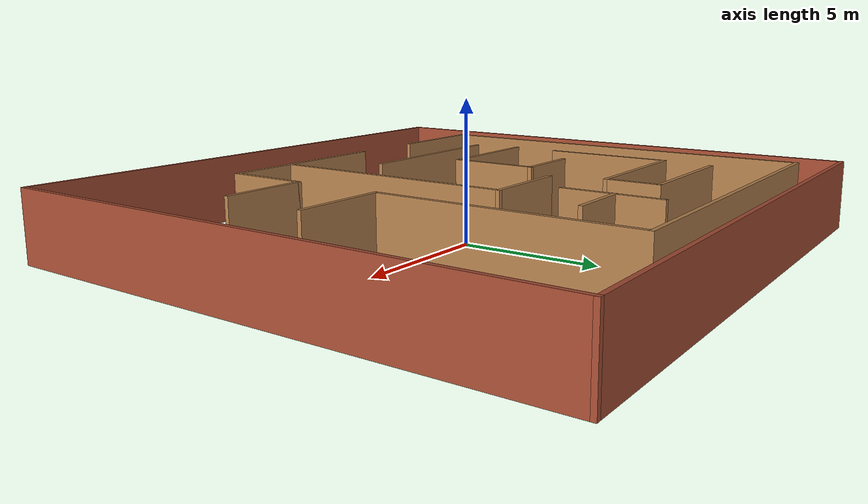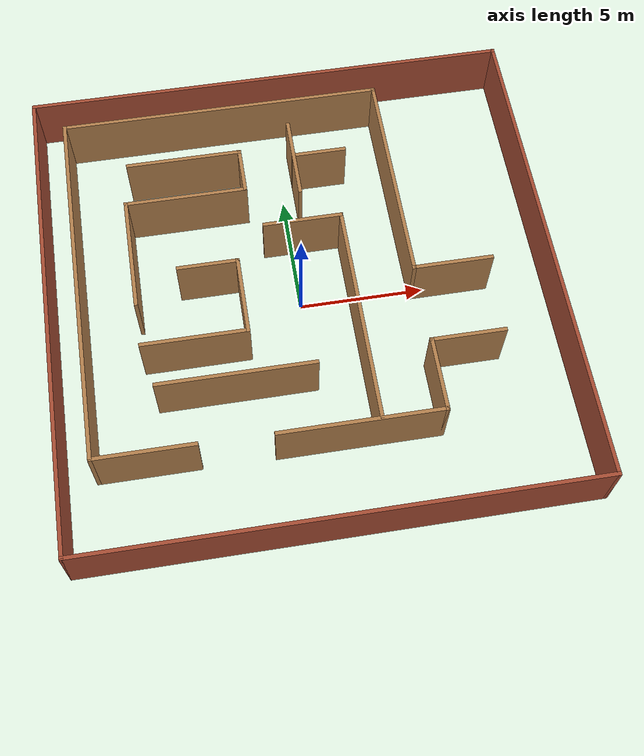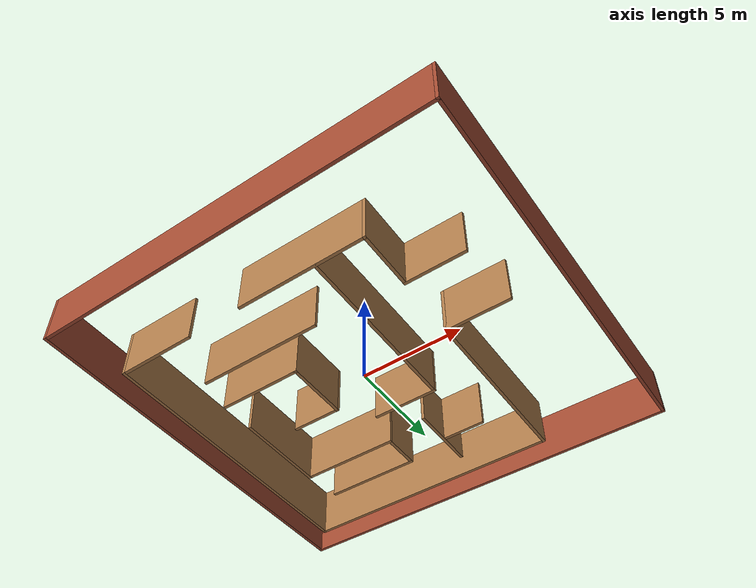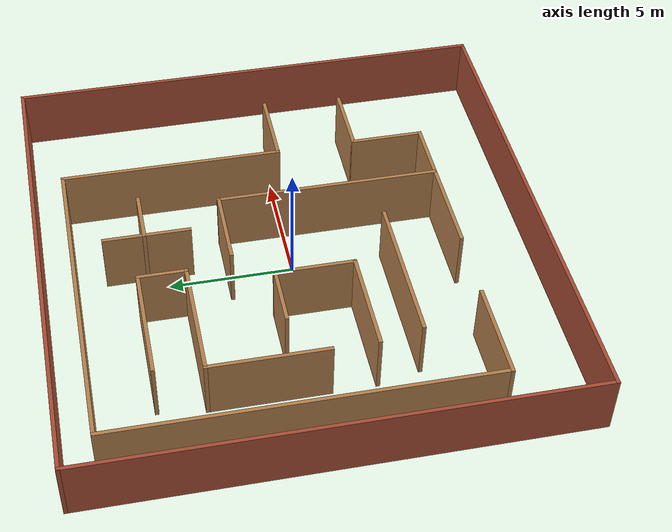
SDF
<?xml version='1.0'?>
<sdf version='1.7'>
  <model name='maze'>
    <pose>0.0401 0.089548 0 0 -0 0</pose>
    <link name='Wall_23'>
      <collision name='Wall_23_Collision'>
        <geometry>
          <box>
            <size>20 0.15 2.5</size>
          </box>
        </geometry>
        <pose>0 0 1.25 0 -0 0</pose>
      </collision>
      <visual name='Wall_23_Visual'>
        <pose>0 0 1.25 0 -0 0</pose>
        <geometry>
          <box>
            <size>20 0.15 2.5</size>
          </box>
        </geometry>
        <material>
          <script>
            <uri>file://media/materials/scripts/gazebo.material</uri>
            <name>Gazebo/Bricks</name>
          </script>
          <ambient>1 1 1 1</ambient>
        </material>
        <meta>
          <layer>0</layer>
        </meta>
      </visual>
      <pose>0 -9.8 0 0 -0 0</pose>
    </link>
    <link name='Wall_24'>
      <collision name='Wall_24_Collision'>
        <geometry>
          <box>
            <size>19.75 0.15 2.5</size>
          </box>
        </geometry>
        <pose>0 0 1.25 0 -0 0</pose>
      </collision>
      <visual name='Wall_24_Visual'>
        <pose>0 0 1.25 0 -0 0</pose>
        <geometry>
          <box>
            <size>19.75 0.15 2.5</size>
          </box>
        </geometry>
        <material>
          <script>
            <uri>file://media/materials/scripts/gazebo.material</uri>
            <name>Gazebo/Bricks</name>
          </script>
          <ambient>1 1 1 1</ambient>
        </material>
        <meta>
          <layer>0</layer>
        </meta>
      </visual>
      <pose>9.925 0 0 0 -0 1.5708</pose>
    </link>
    <link name='Wall_25'>
      <collision name='Wall_25_Collision'>
        <geometry>
          <box>
            <size>20 0.15 2.5</size>
          </box>
        </geometry>
        <pose>0 0 1.25 0 -0 0</pose>
      </collision>
      <visual name='Wall_25_Visual'>
        <pose>0 0 1.25 0 -0 0</pose>
        <geometry>
          <box>
            <size>20 0.15 2.5</size>
          </box>
        </geometry>
        <material>
          <script>
            <uri>file://media/materials/scripts/gazebo.material</uri>
            <name>Gazebo/Bricks</name>
          </script>
          <ambient>1 1 1 1</ambient>
        </material>
        <meta>
          <layer>0</layer>
        </meta>
      </visual>
      <pose>0 9.8 0 0 -0 3.14159</pose>
    </link>
    <link name='Wall_26'>
      <collision name='Wall_26_Collision'>
        <geometry>
          <box>
            <size>19.75 0.15 2.5</size>
          </box>
        </geometry>
        <pose>0 0 1.25 0 -0 0</pose>
      </collision>
      <visual name='Wall_26_Visual'>
        <pose>0 0 1.25 0 -0 0</pose>
        <geometry>
          <box>
            <size>19.75 0.15 2.5</size>
          </box>
        </geometry>
        <material>
          <script>
            <uri>file://media/materials/scripts/gazebo.material</uri>
            <name>Gazebo/Bricks</name>
          </script>
          <ambient>1 1 1 1</ambient>
        </material>
        <meta>
          <layer>0</layer>
        </meta>
      </visual>
      <pose>-9.925 0 0 0 -0 -1.5708</pose>
    </link>
    <link name='Wall_28'>
      <collision name='Wall_28_Collision'>
        <geometry>
          <box>
            <size>4 0.15 2.5</size>
          </box>
        </geometry>
        <pose>0 0 1.25 0 -0 0</pose>
      </collision>
      <visual name='Wall_28_Visual'>
        <pose>0 0 1.25 0 -0 0</pose>
        <geometry>
          <box>
            <size>4 0.15 2.5</size>
          </box>
        </geometry>
        <material>
          <script>
            <uri>file://media/materials/scripts/gazebo.material</uri>
            <name>Gazebo/Wood</name>
          </script>
          <ambient>1 1 1 1</ambient>
        </material>
        <meta>
          <layer>0</layer>
        </meta>
      </visual>
      <pose>-6.78262 -6.33881 0 0 -0 3.14159</pose>
    </link>
    <link name='Wall_29'>
      <collision name='Wall_29_Collision'>
        <geometry>
          <box>
            <size>15 0.15 2.5</size>
          </box>
        </geometry>
        <pose>0 0 1.25 0 -0 0</pose>
      </collision>
      <visual name='Wall_29_Visual'>
        <pose>0 0 1.25 0 -0 0</pose>
        <geometry>
          <box>
            <size>15 0.15 2.5</size>
          </box>
        </geometry>
        <material>
          <script>
            <uri>file://media/materials/scripts/gazebo.material</uri>
            <name>Gazebo/Wood</name>
          </script>
          <ambient>1 1 1 1</ambient>
        </material>
        <meta>
          <layer>0</layer>
        </meta>
      </visual>
      <pose>-8.70762 1.08619 0 0 -0 1.5708</pose>
    </link>
    <link name='Wall_30'>
      <collision name='Wall_30_Collision'>
        <geometry>
          <box>
            <size>13.25 0.15 2.5</size>
          </box>
        </geometry>
        <pose>0 0 1.25 0 -0 0</pose>
      </collision>
      <visual name='Wall_30_Visual'>
        <pose>0 0 1.25 0 -0 0</pose>
        <geometry>
          <box>
            <size>13.25 0.15 2.5</size>
          </box>
        </geometry>
        <material>
          <script>
            <uri>file://media/materials/scripts/gazebo.material</uri>
            <name>Gazebo/Wood</name>
          </script>
          <ambient>1 1 1 1</ambient>
        </material>
        <meta>
          <layer>0</layer>
        </meta>
      </visual>
      <pose>-2.15762 8.51119 0 0 -0 0</pose>
    </link>
    <link name='Wall_31'>
      <collision name='Wall_31_Collision'>
        <geometry>
          <box>
            <size>9 0.15 2.5</size>
          </box>
        </geometry>
        <pose>0 0 1.25 0 -0 0</pose>
      </collision>
      <visual name='Wall_31_Visual'>
        <pose>0 0 1.25 0 -0 0</pose>
        <geometry>
          <box>
            <size>9 0.15 2.5</size>
          </box>
        </geometry>
        <material>
          <script>
            <uri>file://media/materials/scripts/gazebo.material</uri>
            <name>Gazebo/Wood</name>
          </script>
          <ambient>1 1 1 1</ambient>
        </material>
        <meta>
          <layer>0</layer>
        </meta>
      </visual>
      <pose>4.39238 4.08619 0 0 -0 -1.5708</pose>
    </link>
    <link name='Wall_32'>
      <collision name='Wall_32_Collision'>
        <geometry>
          <box>
            <size>3.25 0.15 2.5</size>
          </box>
        </geometry>
        <pose>0 0 1.25 0 -0 0</pose>
      </collision>
      <visual name='Wall_32_Visual'>
        <pose>0 0 1.25 0 -0 0</pose>
        <geometry>
          <box>
            <size>3.25 0.15 2.5</size>
          </box>
        </geometry>
        <material>
          <script>
            <uri>file://media/materials/scripts/gazebo.material</uri>
            <name>Gazebo/Wood</name>
          </script>
          <ambient>1 1 1 1</ambient>
        </material>
        <meta>
          <layer>0</layer>
        </meta>
      </visual>
      <pose>5.94238 -0.338807 0 0 -0 0</pose>
    </link>
    <link name='Wall_34'>
      <collision name='Wall_34_Collision'>
        <geometry>
          <box>
            <size>6.5 0.15 2.5</size>
          </box>
        </geometry>
        <pose>0 0 1.25 0 -0 0</pose>
      </collision>
      <visual name='Wall_34_Visual'>
        <pose>0 0 1.25 0 -0 0</pose>
        <geometry>
          <box>
            <size>6.5 0.15 2.5</size>
          </box>
        </geometry>
        <material>
          <script>
            <uri>file://media/materials/scripts/gazebo.material</uri>
            <name>Gazebo/Wood</name>
          </script>
          <ambient>1 1 1 1</ambient>
        </material>
        <meta>
          <layer>0</layer>
        </meta>
      </visual>
      <pose>1.24839 -6.38533 0 0 -0 0</pose>
    </link>
    <link name='Wall_35'>
      <collision name='Wall_35_Collision'>
        <geometry>
          <box>
            <size>3 0.15 2.5</size>
          </box>
        </geometry>
        <pose>0 0 1.25 0 -0 0</pose>
      </collision>
      <visual name='Wall_35_Visual'>
        <pose>0 0 1.25 0 -0 0</pose>
        <geometry>
          <box>
            <size>3 0.15 2.5</size>
          </box>
        </geometry>
        <material>
          <script>
            <uri>file://media/materials/scripts/gazebo.material</uri>
            <name>Gazebo/Wood</name>
          </script>
          <ambient>1 1 1 1</ambient>
        </material>
        <meta>
          <layer>0</layer>
        </meta>
      </visual>
      <pose>4.42339 -4.96033 0 0 -0 1.5708</pose>
    </link>
    <link name='Wall_36'>
      <collision name='Wall_36_Collision'>
        <geometry>
          <box>
            <size>3 0.15 2.5</size>
          </box>
        </geometry>
        <pose>0 0 1.25 0 -0 0</pose>
      </collision>
      <visual name='Wall_36_Visual'>
        <pose>0 0 1.25 0 -0 0</pose>
        <geometry>
          <box>
            <size>3 0.15 2.5</size>
          </box>
        </geometry>
        <material>
          <script>
            <uri>file://media/materials/scripts/gazebo.material</uri>
            <name>Gazebo/Wood</name>
          </script>
          <ambient>1 1 1 1</ambient>
        </material>
        <meta>
          <layer>0</layer>
        </meta>
      </visual>
      <pose>5.84839 -3.53533 0 0 -0 0</pose>
    </link>
    <link name='Wall_38'>
      <collision name='Wall_38_Collision'>
        <geometry>
          <box>
            <size>6.25 0.15 2.5</size>
          </box>
        </geometry>
        <pose>0 0 1.25 0 -0 0</pose>
      </collision>
      <visual name='Wall_38_Visual'>
        <pose>0 0 1.25 0 -0 0</pose>
        <geometry>
          <box>
            <size>6.25 0.15 2.5</size>
          </box>
        </geometry>
        <material>
          <script>
            <uri>file://media/materials/scripts/gazebo.material</uri>
            <name>Gazebo/Wood</name>
          </script>
          <ambient>1 1 1 1</ambient>
        </material>
        <meta>
          <layer>0</layer>
        </meta>
      </visual>
      <pose>-3.06377 -3.77999 0 0 -0 0</pose>
    </link>
    <link name='Wall_40'>
      <collision name='Wall_40_Collision'>
        <geometry>
          <box>
            <size>9 0.15 2.5</size>
          </box>
        </geometry>
        <pose>0 0 1.25 0 -0 0</pose>
      </collision>
      <visual name='Wall_40_Visual'>
        <pose>0 0 1.25 0 -0 0</pose>
        <geometry>
          <box>
            <size>9 0.15 2.5</size>
          </box>
        </geometry>
        <material>
          <script>
            <uri>file://media/materials/scripts/gazebo.material</uri>
            <name>Gazebo/Wood</name>
          </script>
          <ambient>1 1 1 1</ambient>
        </material>
        <meta>
          <layer>0</layer>
        </meta>
      </visual>
      <pose>1.9814 -1.91381 0 0 -0 1.5708</pose>
    </link>
    <link name='Wall_41'>
      <collision name='Wall_41_Collision'>
        <geometry>
          <box>
            <size>3.25 0.15 2.5</size>
          </box>
        </geometry>
        <pose>0 0 1.25 0 -0 0</pose>
      </collision>
      <visual name='Wall_41_Visual'>
        <pose>0 0 1.25 0 -0 0</pose>
        <geometry>
          <box>
            <size>3.25 0.15 2.5</size>
          </box>
        </geometry>
        <material>
          <script>
            <uri>file://media/materials/scripts/gazebo.material</uri>
            <name>Gazebo/Wood</name>
          </script>
          <ambient>1 1 1 1</ambient>
        </material>
        <meta>
          <layer>0</layer>
        </meta>
      </visual>
      <pose>0.431394 2.51119 0 0 -0 3.14159</pose>
    </link>
    <link name='Wall_44'>
      <collision name='Wall_44_Collision'>
        <geometry>
          <box>
            <size>4.75 0.15 2.5</size>
          </box>
        </geometry>
        <pose>0 0 1.25 0 -0 0</pose>
      </collision>
      <visual name='Wall_44_Visual'>
        <pose>0 0 1.25 0 -0 0</pose>
        <geometry>
          <box>
            <size>4.75 0.15 2.5</size>
          </box>
        </geometry>
        <material>
          <script>
            <uri>file://media/materials/scripts/gazebo.material</uri>
            <name>Gazebo/Wood</name>
          </script>
          <ambient>1 1 1 1</ambient>
        </material>
        <meta>
          <layer>0</layer>
        </meta>
      </visual>
      <pose>-3.95334 6.17613 0 0 -0 0</pose>
    </link>
    <link name='Wall_45'>
      <collision name='Wall_45_Collision'>
        <geometry>
          <box>
            <size>2 0.15 2.5</size>
          </box>
        </geometry>
        <pose>0 0 1.25 0 -0 0</pose>
      </collision>
      <visual name='Wall_45_Visual'>
        <pose>0 0 1.25 0 -0 0</pose>
        <geometry>
          <box>
            <size>2 0.15 2.5</size>
          </box>
        </geometry>
        <material>
          <script>
            <uri>file://media/materials/scripts/gazebo.material</uri>
            <name>Gazebo/Wood</name>
          </script>
          <ambient>1 1 1 1</ambient>
        </material>
        <meta>
          <layer>0</layer>
        </meta>
      </visual>
      <pose>-1.65334 5.25113 0 0 -0 -1.5708</pose>
    </link>
    <link name='Wall_46'>
      <collision name='Wall_46_Collision'>
        <geometry>
          <box>
            <size>5 0.15 2.5</size>
          </box>
        </geometry>
        <pose>0 0 1.25 0 -0 0</pose>
      </collision>
      <visual name='Wall_46_Visual'>
        <pose>0 0 1.25 0 -0 0</pose>
        <geometry>
          <box>
            <size>5 0.15 2.5</size>
          </box>
        </geometry>
        <material>
          <script>
            <uri>file://media/materials/scripts/gazebo.material</uri>
            <name>Gazebo/Wood</name>
          </script>
          <ambient>1 1 1 1</ambient>
        </material>
        <meta>
          <layer>0</layer>
        </meta>
      </visual>
      <pose>-4.07834 4.32613 0 0 -0 3.14159</pose>
    </link>
    <link name='Wall_47'>
      <collision name='Wall_47_Collision'>
        <geometry>
          <box>
            <size>4.75 0.15 2.5</size>
          </box>
        </geometry>
        <pose>0 0 1.25 0 -0 0</pose>
      </collision>
      <visual name='Wall_47_Visual'>
        <pose>0 0 1.25 0 -0 0</pose>
        <geometry>
          <box>
            <size>4.75 0.15 2.5</size>
          </box>
        </geometry>
        <material>
          <script>
            <uri>file://media/materials/scripts/gazebo.material</uri>
            <name>Gazebo/Wood</name>
          </script>
          <ambient>1 1 1 1</ambient>
        </material>
        <meta>
          <layer>0</layer>
        </meta>
      </visual>
      <pose>-6.50334 2.02613 0 0 -0 -1.5708</pose>
    </link>
    <link name='Wall_49'>
      <collision name='Wall_49_Collision'>
        <geometry>
          <box>
            <size>4.25 0.15 2.5</size>
          </box>
        </geometry>
        <pose>0 0 1.25 0 -0 0</pose>
      </collision>
      <visual name='Wall_49_Visual'>
        <pose>0 0 1.25 0 -0 0</pose>
        <geometry>
          <box>
            <size>4.25 0.15 2.5</size>
          </box>
        </geometry>
        <material>
          <script>
            <uri>file://media/materials/scripts/gazebo.material</uri>
            <name>Gazebo/Wood</name>
          </script>
          <ambient>1 1 1 1</ambient>
        </material>
        <meta>
          <layer>0</layer>
        </meta>
      </visual>
      <pose>-4.43596 -2.05861 0 0 -0 0</pose>
    </link>
    <link name='Wall_50'>
      <collision name='Wall_50_Collision'>
        <geometry>
          <box>
            <size>3.25 0.15 2.5</size>
          </box>
        </geometry>
        <pose>0 0 1.25 0 -0 0</pose>
      </collision>
      <visual name='Wall_50_Visual'>
        <pose>0 0 1.25 0 -0 0</pose>
        <geometry>
          <box>
            <size>3.25 0.15 2.5</size>
          </box>
        </geometry>
        <material>
          <script>
            <uri>file://media/materials/scripts/gazebo.material</uri>
            <name>Gazebo/Wood</name>
          </script>
          <ambient>1 1 1 1</ambient>
        </material>
        <meta>
          <layer>0</layer>
        </meta>
      </visual>
      <pose>-2.38596 -0.508607 0 0 -0 1.5708</pose>
    </link>
    <link name='Wall_51'>
      <collision name='Wall_51_Collision'>
        <geometry>
          <box>
            <size>2.5 0.15 2.5</size>
          </box>
        </geometry>
        <pose>0 0 1.25 0 -0 0</pose>
      </collision>
      <visual name='Wall_51_Visual'>
        <pose>0 0 1.25 0 -0 0</pose>
        <geometry>
          <box>
            <size>2.5 0.15 2.5</size>
          </box>
        </geometry>
        <material>
          <script>
            <uri>file://media/materials/scripts/gazebo.material</uri>
            <name>Gazebo/Wood</name>
          </script>
          <ambient>1 1 1 1</ambient>
        </material>
        <meta>
          <layer>0</layer>
        </meta>
      </visual>
      <pose>-3.56096 1.04139 0 0 -0 3.14159</pose>
    </link>
    <link name='Wall_53'>
      <collision name='Wall_53_Collision'>
        <geometry>
          <box>
            <size>3.5 0.15 2.5</size>
          </box>
        </geometry>
        <pose>0 0 1.25 0 -0 0</pose>
      </collision>
      <visual name='Wall_53_Visual'>
        <pose>0 0 1.25 0 -0 0</pose>
        <geometry>
          <box>
            <size>3.5 0.15 2.5</size>
          </box>
        </geometry>
        <material>
          <script>
            <uri>file://media/materials/scripts/gazebo.material</uri>
            <name>Gazebo/Wood</name>
          </script>
          <ambient>1 1 1 1</ambient>
        </material>
        <meta>
          <layer>0</layer>
        </meta>
      </visual>
      <pose>0.539153 5.57118 0 0 -0 -1.5708</pose>
    </link>
    <link name='Wall_55'>
      <collision name='Wall_55_Collision'>
        <geometry>
          <box>
            <size>2.25 0.15 2.5</size>
          </box>
        </geometry>
        <pose>0 0 1.25 0 -0 0</pose>
      </collision>
      <visual name='Wall_55_Visual'>
        <pose>0 0 1.25 0 -0 0</pose>
        <geometry>
          <box>
            <size>2.25 0.15 2.5</size>
          </box>
        </geometry>
        <material>
          <script>
            <uri>file://media/materials/scripts/gazebo.material</uri>
            <name>Gazebo/Wood</name>
          </script>
          <ambient>1 1 1 1</ambient>
        </material>
        <meta>
          <layer>0</layer>
        </meta>
      </visual>
      <pose>1.58915 5.66436 0 0 -0 0</pose>
    </link>
    <static>1</static>
  </model>
</sdf>
